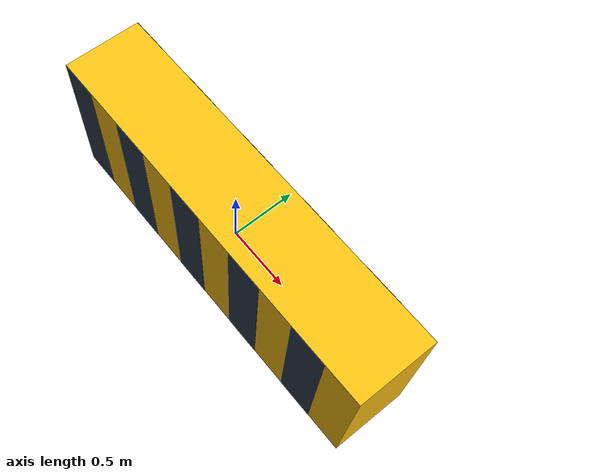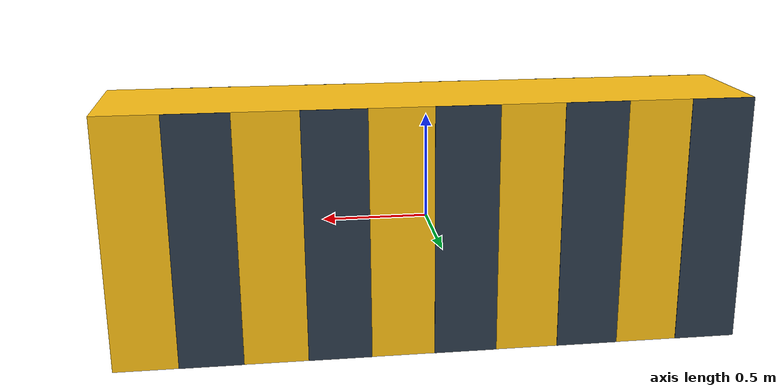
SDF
<?xml version="1.0"?>
<sdf version="1.9">
  <model name="wh_barrier">
    <static>true</static>
    <link name="body">
      <visual name="solid_visual">
        <pose>0 0 0 0 0 0</pose>
        <geometry>
          <box>
            <size>3 0.6 1.2</size>
          </box>
        </geometry>
        <material>
          <ambient>1 0.76 0.08 1</ambient>
          <diffuse>1 0.76 0.08 1</diffuse>
          <specular>0.06 0.06 0.06 1</specular>
        </material>
      </visual>
      <collision name="solid_collision">
        <pose>0 0 0 0 0 0</pose>
        <geometry>
          <box>
            <size>3 0.6 1.2</size>
          </box>
        </geometry>
      </collision>
      <visual name="stripe_0_-1_visual">
        <pose>-1.35 -0.301 0 0 0 0</pose>
        <geometry>
          <box>
            <size>0.3 0.002 1.2</size>
          </box>
        </geometry>
        <material>
          <ambient>0.17 0.23 0.29 1</ambient>
          <diffuse>0.17 0.23 0.29 1</diffuse>
          <specular>0.06 0.06 0.06 1</specular>
        </material>
      </visual>
      <visual name="stripe_0_1_visual">
        <pose>-1.35 0.301 0 0 0 0</pose>
        <geometry>
          <box>
            <size>0.3 0.002 1.2</size>
          </box>
        </geometry>
        <material>
          <ambient>0.17 0.23 0.29 1</ambient>
          <diffuse>0.17 0.23 0.29 1</diffuse>
          <specular>0.06 0.06 0.06 1</specular>
        </material>
      </visual>
      <visual name="stripe_2_-1_visual">
        <pose>-0.75 -0.301 0 0 0 0</pose>
        <geometry>
          <box>
            <size>0.3 0.002 1.2</size>
          </box>
        </geometry>
        <material>
          <ambient>0.17 0.23 0.29 1</ambient>
          <diffuse>0.17 0.23 0.29 1</diffuse>
          <specular>0.06 0.06 0.06 1</specular>
        </material>
      </visual>
      <visual name="stripe_2_1_visual">
        <pose>-0.75 0.301 0 0 0 0</pose>
        <geometry>
          <box>
            <size>0.3 0.002 1.2</size>
          </box>
        </geometry>
        <material>
          <ambient>0.17 0.23 0.29 1</ambient>
          <diffuse>0.17 0.23 0.29 1</diffuse>
          <specular>0.06 0.06 0.06 1</specular>
        </material>
      </visual>
      <visual name="stripe_4_-1_visual">
        <pose>-0.15 -0.301 0 0 0 0</pose>
        <geometry>
          <box>
            <size>0.3 0.002 1.2</size>
          </box>
        </geometry>
        <material>
          <ambient>0.17 0.23 0.29 1</ambient>
          <diffuse>0.17 0.23 0.29 1</diffuse>
          <specular>0.06 0.06 0.06 1</specular>
        </material>
      </visual>
      <visual name="stripe_4_1_visual">
        <pose>-0.15 0.301 0 0 0 0</pose>
        <geometry>
          <box>
            <size>0.3 0.002 1.2</size>
          </box>
        </geometry>
        <material>
          <ambient>0.17 0.23 0.29 1</ambient>
          <diffuse>0.17 0.23 0.29 1</diffuse>
          <specular>0.06 0.06 0.06 1</specular>
        </material>
      </visual>
      <visual name="stripe_6_-1_visual">
        <pose>0.45 -0.301 0 0 0 0</pose>
        <geometry>
          <box>
            <size>0.3 0.002 1.2</size>
          </box>
        </geometry>
        <material>
          <ambient>0.17 0.23 0.29 1</ambient>
          <diffuse>0.17 0.23 0.29 1</diffuse>
          <specular>0.06 0.06 0.06 1</specular>
        </material>
      </visual>
      <visual name="stripe_6_1_visual">
        <pose>0.45 0.301 0 0 0 0</pose>
        <geometry>
          <box>
            <size>0.3 0.002 1.2</size>
          </box>
        </geometry>
        <material>
          <ambient>0.17 0.23 0.29 1</ambient>
          <diffuse>0.17 0.23 0.29 1</diffuse>
          <specular>0.06 0.06 0.06 1</specular>
        </material>
      </visual>
      <visual name="stripe_8_-1_visual">
        <pose>1.05 -0.301 0 0 0 0</pose>
        <geometry>
          <box>
            <size>0.3 0.002 1.2</size>
          </box>
        </geometry>
        <material>
          <ambient>0.17 0.23 0.29 1</ambient>
          <diffuse>0.17 0.23 0.29 1</diffuse>
          <specular>0.06 0.06 0.06 1</specular>
        </material>
      </visual>
      <visual name="stripe_8_1_visual">
        <pose>1.05 0.301 0 0 0 0</pose>
        <geometry>
          <box>
            <size>0.3 0.002 1.2</size>
          </box>
        </geometry>
        <material>
          <ambient>0.17 0.23 0.29 1</ambient>
          <diffuse>0.17 0.23 0.29 1</diffuse>
          <specular>0.06 0.06 0.06 1</specular>
        </material>
      </visual>
      <sensor name="barrier_contact" type="contact">
        <always_on>true</always_on>
        <update_rate>20</update_rate>
        <topic>/warehouse/contacts/barrier</topic>
        <contact>
          <collision>solid_collision</collision>
          <topic>/warehouse/contacts/barrier</topic>
        </contact>
      </sensor>
    </link>
  </model>
</sdf>
